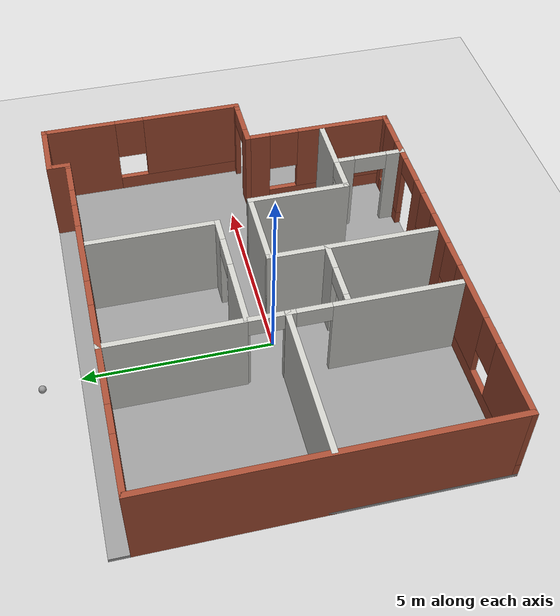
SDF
<sdf version="1.6">
 <world name="default">
  <model name="ground_plane">
   <static>1</static>
   <link name="link">
    <collision name="collision">
     <geometry><plane><normal>0 0 1</normal><size>100 100</size></plane></geometry>
     <surface><friction><ode><mu>100</mu><mu2>50</mu2></ode></friction></surface>
    </collision>
    <visual name="visual">
     <cast_shadows>0</cast_shadows>
     <geometry><plane><normal>0 0 1</normal><size>100 100</size></plane></geometry>
     <material>
      <script><uri>file://media/materials/scripts/gazebo.material</uri><name>Gazebo/Grey</name></script>
     </material>
    </visual>
   </link>
  </model>
  <model name="Building">
   <pose>0.890532 0.189259 0 0 -0 0</pose>
   <link name="Floor_0">
    <collision name="Floor_0_Collision">
     <geometry><box><size>12.15 9.65 0.1</size></box></geometry>
     <pose>0 0 0.05 0 -0 0</pose>
    </collision>
    <visual name="Floor_0_Visual">
     <pose>0 0 0.05 0 -0 0</pose>
     <geometry><box><size>12.15 9.65 0.1</size></box></geometry>
     <material>
      <script><uri>file://media/materials/scripts/gazebo.material</uri><name>Gazebo/Grey</name></script>
      <ambient>1 1 1 1</ambient>
     </material>
     <meta><layer>0</layer></meta>
    </visual>
   </link>
   <link name="Wall_10">
    <pose>-0.75 4.25 0 0 -0 0</pose>
    <visual name="Wall_10_Visual_0">
     <pose>-4.51925 0 1.25 0 -0 0</pose>
     <geometry><box><size>1.6115 0.15 2.5</size></box></geometry>
     <material>
      <script><uri>file://media/materials/scripts/gazebo.material</uri><name>Gazebo/Bricks</name></script>
      <ambient>1 1 1 1</ambient>
     </material>
     <meta><layer>0</layer></meta>
    </visual>
    <collision name="Wall_10_Collision_0">
     <geometry><box><size>1.6115 0.15 2.5</size></box></geometry>
     <pose>-4.51925 0 1.25 0 -0 0</pose>
    </collision>
    <visual name="Wall_10_Visual_1">
     <pose>5.2153 0 1.25 0 -0 0</pose>
     <geometry><box><size>0.219398 0.15 2.5</size></box></geometry>
     <material>
      <script><uri>file://media/materials/scripts/gazebo.material</uri><name>Gazebo/Bricks</name></script>
      <ambient>1 1 1 1</ambient>
     </material>
     <meta><layer>0</layer></meta>
    </visual>
    <collision name="Wall_10_Collision_1">
     <geometry><box><size>0.219398 0.15 2.5</size></box></geometry>
     <pose>5.2153 0 1.25 0 -0 0</pose>
    </collision>
    <visual name="Wall_10_Visual_2">
     <pose>0.246053 0 0.25 0 -0 0</pose>
     <geometry><box><size>7.9191 0.15 0.5</size></box></geometry>
     <material>
      <script><uri>file://media/materials/scripts/gazebo.material</uri><name>Gazebo/Bricks</name></script>
      <ambient>1 1 1 1</ambient>
     </material>
     <meta><layer>0</layer></meta>
    </visual>
    <collision name="Wall_10_Collision_2">
     <geometry><box><size>7.9191 0.15 0.5</size></box></geometry>
     <pose>0.246053 0 0.25 0 -0 0</pose>
    </collision>
    <visual name="Wall_10_Visual_3">
     <pose>-1.433 0 1.5 0 -0 0</pose>
     <geometry><box><size>2.96099 0.15 2</size></box></geometry>
     <material>
      <script><uri>file://media/materials/scripts/gazebo.material</uri><name>Gazebo/Bricks</name></script>
      <ambient>1 1 1 1</ambient>
     </material>
     <meta><layer>0</layer></meta>
    </visual>
    <collision name="Wall_10_Collision_3">
     <geometry><box><size>2.96099 0.15 2</size></box></geometry>
     <pose>-1.433 0 1.5 0 -0 0</pose>
    </collision>
    <visual name="Wall_10_Visual_4">
     <pose>1.82828 0 1.5 0 -0 0</pose>
     <geometry><box><size>1.96157 0.15 2</size></box></geometry>
     <material>
      <script><uri>file://media/materials/scripts/gazebo.material</uri><name>Gazebo/Bricks</name></script>
      <ambient>1 1 1 1</ambient>
     </material>
     <meta><layer>0</layer></meta>
    </visual>
    <collision name="Wall_10_Collision_4">
     <geometry><box><size>1.96157 0.15 2</size></box></geometry>
     <pose>1.82828 0 1.5 0 -0 0</pose>
    </collision>
    <visual name="Wall_10_Visual_5">
     <pose>3.90733 0 1.5 0 -0 0</pose>
     <geometry><box><size>0.596536 0.15 2</size></box></geometry>
     <material>
      <script><uri>file://media/materials/scripts/gazebo.material</uri><name>Gazebo/Bricks</name></script>
      <ambient>1 1 1 1</ambient>
     </material>
     <meta><layer>0</layer></meta>
    </visual>
    <collision name="Wall_10_Collision_5">
     <geometry><box><size>0.596536 0.15 2</size></box></geometry>
     <pose>3.90733 0 1.5 0 -0 0</pose>
    </collision>
    <visual name="Wall_10_Visual_6">
     <pose>-3.3135 0 1.9 0 -0 0</pose>
     <geometry><box><size>0.8 0.15 1.2</size></box></geometry>
     <material>
      <script><uri>file://media/materials/scripts/gazebo.material</uri><name>Gazebo/Bricks</name></script>
      <ambient>1 1 1 1</ambient>
     </material>
     <meta><layer>0</layer></meta>
    </visual>
    <collision name="Wall_10_Collision_6">
     <geometry><box><size>0.8 0.15 1.2</size></box></geometry>
     <pose>-3.3135 0 1.9 0 -0 0</pose>
    </collision>
    <visual name="Wall_10_Visual_7">
     <pose>0.447498 0 1.9 0 -0 0</pose>
     <geometry><box><size>0.8 0.15 1.2</size></box></geometry>
     <material>
      <script><uri>file://media/materials/scripts/gazebo.material</uri><name>Gazebo/Bricks</name></script>
      <ambient>1 1 1 1</ambient>
     </material>
     <meta><layer>0</layer></meta>
    </visual>
    <collision name="Wall_10_Collision_7">
     <geometry><box><size>0.8 0.15 1.2</size></box></geometry>
     <pose>0.447498 0 1.9 0 -0 0</pose>
    </collision>
    <visual name="Wall_10_Visual_8">
     <pose>3.20907 0 1.9 0 -0 0</pose>
     <geometry><box><size>0.8 0.15 1.2</size></box></geometry>
     <material>
      <script><uri>file://media/materials/scripts/gazebo.material</uri><name>Gazebo/Bricks</name></script>
      <ambient>1 1 1 1</ambient>
     </material>
     <meta><layer>0</layer></meta>
    </visual>
    <collision name="Wall_10_Collision_8">
     <geometry><box><size>0.8 0.15 1.2</size></box></geometry>
     <pose>3.20907 0 1.9 0 -0 0</pose>
    </collision>
    <visual name="Wall_10_Visual_9">
     <pose>4.6556 0 2.25 0 -0 0</pose>
     <geometry><box><size>0.9 0.15 0.5</size></box></geometry>
     <material>
      <script><uri>file://media/materials/scripts/gazebo.material</uri><name>Gazebo/Bricks</name></script>
      <ambient>1 1 1 1</ambient>
     </material>
     <meta><layer>0</layer></meta>
    </visual>
    <collision name="Wall_10_Collision_9">
     <geometry><box><size>0.9 0.15 0.5</size></box></geometry>
     <pose>4.6556 0 2.25 0 -0 0</pose>
    </collision>
   </link>
   <link name="Wall_11">
    <collision name="Wall_11_Collision">
     <geometry><box><size>0.65 0.15 2.5</size></box></geometry>
     <pose>0 0 1.25 0 -0 0</pose>
    </collision>
    <visual name="Wall_11_Visual">
     <pose>0 0 1.25 0 -0 0</pose>
     <geometry><box><size>0.65 0.15 2.5</size></box></geometry>
     <material>
      <script><uri>file://media/materials/scripts/gazebo.material</uri><name>Gazebo/Bricks</name></script>
      <ambient>1 1 1 1</ambient>
     </material>
     <meta><layer>0</layer></meta>
    </visual>
    <pose>4.5 4.5 0 0 -0 1.5708</pose>
   </link>
   <link name="Wall_12">
    <collision name="Wall_12_Collision">
     <geometry><box><size>1.65 0.15 2.5</size></box></geometry>
     <pose>0 0 1.25 0 -0 0</pose>
    </collision>
    <visual name="Wall_12_Visual">
     <pose>0 0 1.25 0 -0 0</pose>
     <geometry><box><size>1.65 0.15 2.5</size></box></geometry>
     <material>
      <script><uri>file://media/materials/scripts/gazebo.material</uri><name>Gazebo/Bricks</name></script>
      <ambient>1 1 1 1</ambient>
     </material>
     <meta><layer>0</layer></meta>
    </visual>
    <pose>5.25 4.75 0 0 -0 0</pose>
   </link>
   <link name="Wall_13">
    <pose>6 2 0 0 0 -1.5708</pose>
    <visual name="Wall_13_Visual_0">
     <pose>-1.79372 0 1.25 0 -0 0</pose>
     <geometry><box><size>2.06257 0.15 2.5</size></box></geometry>
     <material>
      <script><uri>file://media/materials/scripts/gazebo.material</uri><name>Gazebo/Bricks</name></script>
      <ambient>1 1 1 1</ambient>
     </material>
     <meta><layer>0</layer></meta>
    </visual>
    <collision name="Wall_13_Collision_0">
     <geometry><box><size>2.06257 0.15 2.5</size></box></geometry>
     <pose>-1.79372 0 1.25 0 -0 0</pose>
    </collision>
    <visual name="Wall_13_Visual_1">
     <pose>1.03128 0 0.25 0 -0 0</pose>
     <geometry><box><size>3.58743 0.15 0.5</size></box></geometry>
     <material>
      <script><uri>file://media/materials/scripts/gazebo.material</uri><name>Gazebo/Bricks</name></script>
      <ambient>1 1 1 1</ambient>
     </material>
     <meta><layer>0</layer></meta>
    </visual>
    <collision name="Wall_13_Collision_1">
     <geometry><box><size>3.58743 0.15 0.5</size></box></geometry>
     <pose>1.03128 0 0.25 0 -0 0</pose>
    </collision>
    <visual name="Wall_13_Visual_2">
     <pose>1.43128 0 1.5 0 -0 0</pose>
     <geometry><box><size>2.78743 0.15 2</size></box></geometry>
     <material>
      <script><uri>file://media/materials/scripts/gazebo.material</uri><name>Gazebo/Bricks</name></script>
      <ambient>1 1 1 1</ambient>
     </material>
     <meta><layer>0</layer></meta>
    </visual>
    <collision name="Wall_13_Collision_2">
     <geometry><box><size>2.78743 0.15 2</size></box></geometry>
     <pose>1.43128 0 1.5 0 -0 0</pose>
    </collision>
    <visual name="Wall_13_Visual_3">
     <pose>-0.362433 0 1.9 0 -0 0</pose>
     <geometry><box><size>0.8 0.15 1.2</size></box></geometry>
     <material>
      <script><uri>file://media/materials/scripts/gazebo.material</uri><name>Gazebo/Bricks</name></script>
      <ambient>1 1 1 1</ambient>
     </material>
     <meta><layer>0</layer></meta>
    </visual>
    <collision name="Wall_13_Collision_3">
     <geometry><box><size>0.8 0.15 1.2</size></box></geometry>
     <pose>-0.362433 0 1.9 0 -0 0</pose>
    </collision>
   </link>
   <link name="Wall_14">
    <pose>5.25 -0.75 0 0 -0 3.14159</pose>
    <visual name="Wall_14_Visual_0">
     <pose>-0.675418 0 1.25 0 -0 0</pose>
     <geometry><box><size>0.299163 0.15 2.5</size></box></geometry>
     <material>
      <script><uri>file://media/materials/scripts/gazebo.material</uri><name>Gazebo/Bricks</name></script>
      <ambient>1 1 1 1</ambient>
     </material>
     <meta><layer>0</layer></meta>
    </visual>
    <collision name="Wall_14_Collision_0">
     <geometry><box><size>0.299163 0.15 2.5</size></box></geometry>
     <pose>-0.675418 0 1.25 0 -0 0</pose>
    </collision>
    <visual name="Wall_14_Visual_1">
     <pose>0.599582 0 1.25 0 -0 0</pose>
     <geometry><box><size>0.450837 0.15 2.5</size></box></geometry>
     <material>
      <script><uri>file://media/materials/scripts/gazebo.material</uri><name>Gazebo/Bricks</name></script>
      <ambient>1 1 1 1</ambient>
     </material>
     <meta><layer>0</layer></meta>
    </visual>
    <collision name="Wall_14_Collision_1">
     <geometry><box><size>0.450837 0.15 2.5</size></box></geometry>
     <pose>0.599582 0 1.25 0 -0 0</pose>
    </collision>
    <visual name="Wall_14_Visual_2">
     <pose>-0.075837 0 2.25 0 -0 0</pose>
     <geometry><box><size>0.9 0.15 0.5</size></box></geometry>
     <material>
      <script><uri>file://media/materials/scripts/gazebo.material</uri><name>Gazebo/Bricks</name></script>
      <ambient>1 1 1 1</ambient>
     </material>
     <meta><layer>0</layer></meta>
    </visual>
    <collision name="Wall_14_Collision_2">
     <geometry><box><size>0.9 0.15 0.5</size></box></geometry>
     <pose>-0.075837 0 2.25 0 -0 0</pose>
    </collision>
   </link>
   <link name="Wall_15">
    <pose>4.5 -2.75 0 0 0 -1.5708</pose>
    <visual name="Wall_15_Visual_0">
     <pose>-1.71977 0 1.25 0 -0 0</pose>
     <geometry><box><size>0.71046 0.15 2.5</size></box></geometry>
     <material>
      <script><uri>file://media/materials/scripts/gazebo.material</uri><name>Gazebo/Bricks</name></script>
      <ambient>1 1 1 1</ambient>
     </material>
     <meta><layer>0</layer></meta>
    </visual>
    <collision name="Wall_15_Collision_0">
     <geometry><box><size>0.71046 0.15 2.5</size></box></geometry>
     <pose>-1.71977 0 1.25 0 -0 0</pose>
    </collision>
    <visual name="Wall_15_Visual_1">
     <pose>0.35523 0 0.25 0 -0 0</pose>
     <geometry><box><size>3.43954 0.15 0.5</size></box></geometry>
     <material>
      <script><uri>file://media/materials/scripts/gazebo.material</uri><name>Gazebo/Bricks</name></script>
      <ambient>1 1 1 1</ambient>
     </material>
     <meta><layer>0</layer></meta>
    </visual>
    <collision name="Wall_15_Collision_1">
     <geometry><box><size>3.43954 0.15 0.5</size></box></geometry>
     <pose>0.35523 0 0.25 0 -0 0</pose>
    </collision>
    <visual name="Wall_15_Visual_2">
     <pose>0.75523 0 1.5 0 -0 0</pose>
     <geometry><box><size>2.63954 0.15 2</size></box></geometry>
     <material>
      <script><uri>file://media/materials/scripts/gazebo.material</uri><name>Gazebo/Bricks</name></script>
      <ambient>1 1 1 1</ambient>
     </material>
     <meta><layer>0</layer></meta>
    </visual>
    <collision name="Wall_15_Collision_2">
     <geometry><box><size>2.63954 0.15 2</size></box></geometry>
     <pose>0.75523 0 1.5 0 -0 0</pose>
    </collision>
    <visual name="Wall_15_Visual_3">
     <pose>-0.96454 0 1.9 0 -0 0</pose>
     <geometry><box><size>0.8 0.15 1.2</size></box></geometry>
     <material>
      <script><uri>file://media/materials/scripts/gazebo.material</uri><name>Gazebo/Bricks</name></script>
      <ambient>1 1 1 1</ambient>
     </material>
     <meta><layer>0</layer></meta>
    </visual>
    <collision name="Wall_15_Collision_3">
     <geometry><box><size>0.8 0.15 1.2</size></box></geometry>
     <pose>-0.96454 0 1.9 0 -0 0</pose>
    </collision>
   </link>
   <link name="Wall_16">
    <pose>-0.75 -4.75 0 0 -0 3.14159</pose>
    <visual name="Wall_16_Visual_0">
     <pose>-5.13705 0 1.25 0 -0 0</pose>
     <geometry><box><size>0.375908 0.15 2.5</size></box></geometry>
     <material>
      <script><uri>file://media/materials/scripts/gazebo.material</uri><name>Gazebo/Bricks</name></script>
      <ambient>1 1 1 1</ambient>
     </material>
     <meta><layer>0</layer></meta>
    </visual>
    <collision name="Wall_16_Collision_0">
     <geometry><box><size>0.375908 0.15 2.5</size></box></geometry>
     <pose>-5.13705 0 1.25 0 -0 0</pose>
    </collision>
    <visual name="Wall_16_Visual_1">
     <pose>-2.23615 0 1.25 0 -0 0</pose>
     <geometry><box><size>0.518056 0.15 2.5</size></box></geometry>
     <material>
      <script><uri>file://media/materials/scripts/gazebo.material</uri><name>Gazebo/Bricks</name></script>
      <ambient>1 1 1 1</ambient>
     </material>
     <meta><layer>0</layer></meta>
    </visual>
    <collision name="Wall_16_Collision_1">
     <geometry><box><size>0.518056 0.15 2.5</size></box></geometry>
     <pose>-2.23615 0 1.25 0 -0 0</pose>
    </collision>
    <visual name="Wall_16_Visual_2">
     <pose>-4.17213 0 0.25 0 -0 0</pose>
     <geometry><box><size>1.55392 0.15 0.5</size></box></geometry>
     <material>
      <script><uri>file://media/materials/scripts/gazebo.material</uri><name>Gazebo/Bricks</name></script>
      <ambient>1 1 1 1</ambient>
     </material>
     <meta><layer>0</layer></meta>
    </visual>
    <collision name="Wall_16_Collision_2">
     <geometry><box><size>1.55392 0.15 0.5</size></box></geometry>
     <pose>-4.17213 0 0.25 0 -0 0</pose>
    </collision>
    <visual name="Wall_16_Visual_3">
     <pose>1.67394 0 0.25 0 -0 0</pose>
     <geometry><box><size>7.30212 0.15 0.5</size></box></geometry>
     <material>
      <script><uri>file://media/materials/scripts/gazebo.material</uri><name>Gazebo/Bricks</name></script>
      <ambient>1 1 1 1</ambient>
     </material>
     <meta><layer>0</layer></meta>
    </visual>
    <collision name="Wall_16_Collision_3">
     <geometry><box><size>7.30212 0.15 0.5</size></box></geometry>
     <pose>1.67394 0 0.25 0 -0 0</pose>
    </collision>
    <visual name="Wall_16_Visual_4">
     <pose>-3.77213 0 1.5 0 -0 0</pose>
     <geometry><box><size>0.753917 0.15 2</size></box></geometry>
     <material>
      <script><uri>file://media/materials/scripts/gazebo.material</uri><name>Gazebo/Bricks</name></script>
      <ambient>1 1 1 1</ambient>
     </material>
     <meta><layer>0</layer></meta>
    </visual>
    <collision name="Wall_16_Collision_4">
     <geometry><box><size>0.753917 0.15 2</size></box></geometry>
     <pose>-3.77213 0 1.5 0 -0 0</pose>
    </collision>
    <visual name="Wall_16_Visual_5">
     <pose>-3.77213 0 1.5 0 -0 0</pose>
     <geometry><box><size>0.753917 0.15 2</size></box></geometry>
     <material>
      <script><uri>file://media/materials/scripts/gazebo.material</uri><name>Gazebo/Bricks</name></script>
      <ambient>1 1 1 1</ambient>
     </material>
     <meta><layer>0</layer></meta>
    </visual>
    <collision name="Wall_16_Collision_5">
     <geometry><box><size>0.753917 0.15 2</size></box></geometry>
     <pose>-3.77213 0 1.5 0 -0 0</pose>
    </collision>
    <visual name="Wall_16_Visual_6">
     <pose>-0.630295 0 1.5 0 -0 0</pose>
     <geometry><box><size>1.09365 0.15 2</size></box></geometry>
     <material>
      <script><uri>file://media/materials/scripts/gazebo.material</uri><name>Gazebo/Bricks</name></script>
      <ambient>1 1 1 1</ambient>
     </material>
     <meta><layer>0</layer></meta>
    </visual>
    <collision name="Wall_16_Collision_6">
     <geometry><box><size>1.09365 0.15 2</size></box></geometry>
     <pose>-0.630295 0 1.5 0 -0 0</pose>
    </collision>
    <visual name="Wall_16_Visual_7">
     <pose>1.59211 0 1.5 0 -0 0</pose>
     <geometry><box><size>1.75116 0.15 2</size></box></geometry>
     <material>
      <script><uri>file://media/materials/scripts/gazebo.material</uri><name>Gazebo/Bricks</name></script>
      <ambient>1 1 1 1</ambient>
     </material>
     <meta><layer>0</layer></meta>
    </visual>
    <collision name="Wall_16_Collision_7">
     <geometry><box><size>1.75116 0.15 2</size></box></geometry>
     <pose>1.59211 0 1.5 0 -0 0</pose>
    </collision>
    <visual name="Wall_16_Visual_8">
     <pose>4.29635 0 1.5 0 -0 0</pose>
     <geometry><box><size>2.05731 0.15 2</size></box></geometry>
     <material>
      <script><uri>file://media/materials/scripts/gazebo.material</uri><name>Gazebo/Bricks</name></script>
      <ambient>1 1 1 1</ambient>
     </material>
     <meta><layer>0</layer></meta>
    </visual>
    <collision name="Wall_16_Collision_8">
     <geometry><box><size>2.05731 0.15 2</size></box></geometry>
     <pose>4.29635 0 1.5 0 -0 0</pose>
    </collision>
    <visual name="Wall_16_Visual_9">
     <pose>-4.54909 0 1.9 0 -0 0</pose>
     <geometry><box><size>0.8 0.15 1.2</size></box></geometry>
     <material>
      <script><uri>file://media/materials/scripts/gazebo.material</uri><name>Gazebo/Bricks</name></script>
      <ambient>1 1 1 1</ambient>
     </material>
     <meta><layer>0</layer></meta>
    </visual>
    <collision name="Wall_16_Collision_9">
     <geometry><box><size>0.8 0.15 1.2</size></box></geometry>
     <pose>-4.54909 0 1.9 0 -0 0</pose>
    </collision>
    <visual name="Wall_16_Visual_10">
     <pose>-1.57712 0 1.9 0 -0 0</pose>
     <geometry><box><size>0.8 0.15 1.2</size></box></geometry>
     <material>
      <script><uri>file://media/materials/scripts/gazebo.material</uri><name>Gazebo/Bricks</name></script>
      <ambient>1 1 1 1</ambient>
     </material>
     <meta><layer>0</layer></meta>
    </visual>
    <collision name="Wall_16_Collision_10">
     <geometry><box><size>0.8 0.15 1.2</size></box></geometry>
     <pose>-1.57712 0 1.9 0 -0 0</pose>
    </collision>
    <visual name="Wall_16_Visual_11">
     <pose>0.316528 0 1.9 0 -0 0</pose>
     <geometry><box><size>0.8 0.15 1.2</size></box></geometry>
     <material>
      <script><uri>file://media/materials/scripts/gazebo.material</uri><name>Gazebo/Bricks</name></script>
      <ambient>1 1 1 1</ambient>
     </material>
     <meta><layer>0</layer></meta>
    </visual>
    <collision name="Wall_16_Collision_11">
     <geometry><box><size>0.8 0.15 1.2</size></box></geometry>
     <pose>0.316528 0 1.9 0 -0 0</pose>
    </collision>
    <visual name="Wall_16_Visual_12">
     <pose>2.86769 0 1.9 0 -0 0</pose>
     <geometry><box><size>0.8 0.15 1.2</size></box></geometry>
     <material>
      <script><uri>file://media/materials/scripts/gazebo.material</uri><name>Gazebo/Bricks</name></script>
      <ambient>1 1 1 1</ambient>
     </material>
     <meta><layer>0</layer></meta>
    </visual>
    <collision name="Wall_16_Collision_12">
     <geometry><box><size>0.8 0.15 1.2</size></box></geometry>
     <pose>2.86769 0 1.9 0 -0 0</pose>
    </collision>
    <visual name="Wall_16_Visual_13">
     <pose>-2.94517 0 2.25 0 -0 0</pose>
     <geometry><box><size>0.9 0.15 0.5</size></box></geometry>
     <material>
      <script><uri>file://media/materials/scripts/gazebo.material</uri><name>Gazebo/Bricks</name></script>
      <ambient>1 1 1 1</ambient>
     </material>
     <meta><layer>0</layer></meta>
    </visual>
    <collision name="Wall_16_Collision_13">
     <geometry><box><size>0.9 0.15 0.5</size></box></geometry>
     <pose>-2.94517 0 2.25 0 -0 0</pose>
    </collision>
    <visual name="Wall_16_Visual_14">
     <pose>-2.94517 0 2.25 0 -0 0</pose>
     <geometry><box><size>0.9 0.15 0.5</size></box></geometry>
     <material>
      <script><uri>file://media/materials/scripts/gazebo.material</uri><name>Gazebo/Bricks</name></script>
      <ambient>1 1 1 1</ambient>
     </material>
     <meta><layer>0</layer></meta>
    </visual>
    <collision name="Wall_16_Collision_14">
     <geometry><box><size>0.9 0.15 0.5</size></box></geometry>
     <pose>-2.94517 0 2.25 0 -0 0</pose>
    </collision>
   </link>
   <link name="Wall_17">
    <pose>-2 -0.171 0 0 0 -1.5708</pose>
    <visual name="Wall_17_Visual_0">
     <pose>-2.70284 0 1.25 0 -0 0</pose>
     <geometry><box><size>3.59432 0.15 2.5</size></box></geometry>
     <material>
      <script><uri>file://media/materials/scripts/gazebo.material</uri><name>Gazebo/CeilingTiled</name></script>
      <ambient>1 1 1 1</ambient>
     </material>
     <meta><layer>0</layer></meta>
    </visual>
    <collision name="Wall_17_Collision_0">
     <geometry><box><size>3.59432 0.15 2.5</size></box></geometry>
     <pose>-2.70284 0 1.25 0 -0 0</pose>
    </collision>
    <visual name="Wall_17_Visual_1">
     <pose>0.136083 0 1.25 0 -0 0</pose>
     <geometry><box><size>0.283529 0.15 2.5</size></box></geometry>
     <material>
      <script><uri>file://media/materials/scripts/gazebo.material</uri><name>Gazebo/CeilingTiled</name></script>
      <ambient>1 1 1 1</ambient>
     </material>
     <meta><layer>0</layer></meta>
    </visual>
    <collision name="Wall_17_Collision_1">
     <geometry><box><size>0.283529 0.15 2.5</size></box></geometry>
     <pose>0.136083 0 1.25 0 -0 0</pose>
    </collision>
    <visual name="Wall_17_Visual_2">
     <pose>2.83892 0 1.25 0 -0 0</pose>
     <geometry><box><size>3.32215 0.15 2.5</size></box></geometry>
     <material>
      <script><uri>file://media/materials/scripts/gazebo.material</uri><name>Gazebo/CeilingTiled</name></script>
      <ambient>1 1 1 1</ambient>
     </material>
     <meta><layer>0</layer></meta>
    </visual>
    <collision name="Wall_17_Collision_2">
     <geometry><box><size>3.32215 0.15 2.5</size></box></geometry>
     <pose>2.83892 0 1.25 0 -0 0</pose>
    </collision>
    <visual name="Wall_17_Visual_3">
     <pose>-0.455681 0 2.25 0 -0 0</pose>
     <geometry><box><size>0.9 0.15 0.5</size></box></geometry>
     <material>
      <script><uri>file://media/materials/scripts/gazebo.material</uri><name>Gazebo/CeilingTiled</name></script>
      <ambient>1 1 1 1</ambient>
     </material>
     <meta><layer>0</layer></meta>
    </visual>
    <collision name="Wall_17_Collision_3">
     <geometry><box><size>0.9 0.15 0.5</size></box></geometry>
     <pose>-0.455681 0 2.25 0 -0 0</pose>
    </collision>
    <visual name="Wall_17_Visual_4">
     <pose>0.727848 0 2.25 0 -0 0</pose>
     <geometry><box><size>0.9 0.15 0.5</size></box></geometry>
     <material>
      <script><uri>file://media/materials/scripts/gazebo.material</uri><name>Gazebo/CeilingTiled</name></script>
      <ambient>1 1 1 1</ambient>
     </material>
     <meta><layer>0</layer></meta>
    </visual>
    <collision name="Wall_17_Collision_4">
     <geometry><box><size>0.9 0.15 0.5</size></box></geometry>
     <pose>0.727848 0 2.25 0 -0 0</pose>
    </collision>
   </link>
   <link name="Wall_19">
    <collision name="Wall_19_Collision">
     <geometry><box><size>4.103 0.15 2.5</size></box></geometry>
     <pose>0 0 1.25 0 -0 0</pose>
    </collision>
    <visual name="Wall_19_Visual">
     <pose>0 0 1.25 0 -0 0</pose>
     <geometry><box><size>4.103 0.15 2.5</size></box></geometry>
     <material>
      <script><uri>file://media/materials/scripts/gazebo.material</uri><name>Gazebo/CeilingTiled</name></script>
      <ambient>1 1 1 1</ambient>
     </material>
     <meta><layer>0</layer></meta>
    </visual>
    <pose>-3.9765 -0.25 0 0 -0 3.14159</pose>
   </link>
   <link name="Wall_21">
    <pose>-0.284 0.75 0 0 -0 0</pose>
    <visual name="Wall_21_Visual_0">
     <pose>-0.806794 0 1.25 0 -0 0</pose>
     <geometry><box><size>1.88641 0.15 2.5</size></box></geometry>
     <material>
      <script><uri>file://media/materials/scripts/gazebo.material</uri><name>Gazebo/CeilingTiled</name></script>
      <ambient>1 1 1 1</ambient>
     </material>
     <meta><layer>0</layer></meta>
    </visual>
    <collision name="Wall_21_Collision_0">
     <geometry><box><size>1.88641 0.15 2.5</size></box></geometry>
     <pose>-0.806794 0 1.25 0 -0 0</pose>
    </collision>
    <visual name="Wall_21_Visual_1">
     <pose>1.39321 0 1.25 0 -0 0</pose>
     <geometry><box><size>0.713588 0.15 2.5</size></box></geometry>
     <material>
      <script><uri>file://media/materials/scripts/gazebo.material</uri><name>Gazebo/CeilingTiled</name></script>
      <ambient>1 1 1 1</ambient>
     </material>
     <meta><layer>0</layer></meta>
    </visual>
    <collision name="Wall_21_Collision_1">
     <geometry><box><size>0.713588 0.15 2.5</size></box></geometry>
     <pose>1.39321 0 1.25 0 -0 0</pose>
    </collision>
    <visual name="Wall_21_Visual_2">
     <pose>0.586412 0 2.25 0 -0 0</pose>
     <geometry><box><size>0.9 0.15 0.5</size></box></geometry>
     <material>
      <script><uri>file://media/materials/scripts/gazebo.material</uri><name>Gazebo/CeilingTiled</name></script>
      <ambient>1 1 1 1</ambient>
     </material>
     <meta><layer>0</layer></meta>
    </visual>
    <collision name="Wall_21_Collision_2">
     <geometry><box><size>0.9 0.15 0.5</size></box></geometry>
     <pose>0.586412 0 2.25 0 -0 0</pose>
    </collision>
   </link>
   <link name="Wall_22">
    <collision name="Wall_22_Collision">
     <geometry><box><size>3.493 0.15 2.5</size></box></geometry>
     <pose>0 0 1.25 0 -0 0</pose>
    </collision>
    <visual name="Wall_22_Visual">
     <pose>0 0 1.25 0 -0 0</pose>
     <geometry><box><size>3.493 0.15 2.5</size></box></geometry>
     <material>
      <script><uri>file://media/materials/scripts/gazebo.material</uri><name>Gazebo/CeilingTiled</name></script>
      <ambient>1 1 1 1</ambient>
     </material>
     <meta><layer>0</layer></meta>
    </visual>
    <pose>1.391 2.4215 0 0 -0 1.5708</pose>
   </link>
   <link name="Wall_24">
    <pose>-1.034 -1.75 0 0 -0 0</pose>
    <visual name="Wall_24_Visual_0">
     <pose>-0.858964 0 1.25 0 -0 0</pose>
     <geometry><box><size>0.282073 0.15 2.5</size></box></geometry>
     <material>
      <script><uri>file://media/materials/scripts/gazebo.material</uri><name>Gazebo/CeilingTiled</name></script>
      <ambient>1 1 1 1</ambient>
     </material>
     <meta><layer>0</layer></meta>
    </visual>
    <collision name="Wall_24_Collision_0">
     <geometry><box><size>0.282073 0.15 2.5</size></box></geometry>
     <pose>-0.858964 0 1.25 0 -0 0</pose>
    </collision>
    <visual name="Wall_24_Visual_1">
     <pose>0.591036 0 1.25 0 -0 0</pose>
     <geometry><box><size>0.817927 0.15 2.5</size></box></geometry>
     <material>
      <script><uri>file://media/materials/scripts/gazebo.material</uri><name>Gazebo/CeilingTiled</name></script>
      <ambient>1 1 1 1</ambient>
     </material>
     <meta><layer>0</layer></meta>
    </visual>
    <collision name="Wall_24_Collision_1">
     <geometry><box><size>0.817927 0.15 2.5</size></box></geometry>
     <pose>0.591036 0 1.25 0 -0 0</pose>
    </collision>
    <visual name="Wall_24_Visual_2">
     <pose>-0.267927 0 2.25 0 -0 0</pose>
     <geometry><box><size>0.9 0.15 0.5</size></box></geometry>
     <material>
      <script><uri>file://media/materials/scripts/gazebo.material</uri><name>Gazebo/CeilingTiled</name></script>
      <ambient>1 1 1 1</ambient>
     </material>
     <meta><layer>0</layer></meta>
    </visual>
    <collision name="Wall_24_Collision_2">
     <geometry><box><size>0.9 0.15 0.5</size></box></geometry>
     <pose>-0.267927 0 2.25 0 -0 0</pose>
    </collision>
   </link>
   <link name="Wall_25">
    <collision name="Wall_25_Collision">
     <geometry><box><size>3.12197 0.15 2.5</size></box></geometry>
     <pose>0 0 1.25 0 -0 0</pose>
    </collision>
    <visual name="Wall_25_Visual">
     <pose>0 0 1.25 0 -0 0</pose>
     <geometry><box><size>3.12197 0.15 2.5</size></box></geometry>
     <material>
      <script><uri>file://media/materials/scripts/gazebo.material</uri><name>Gazebo/CeilingTiled</name></script>
      <ambient>1 1 1 1</ambient>
     </material>
     <meta><layer>0</layer></meta>
    </visual>
    <pose>-0.109221 -3.23599 0 0 0 -1.57095</pose>
   </link>
   <link name="Wall_27">
    <collision name="Wall_27_Collision">
     <geometry><box><size>1.65 0.15 2.5</size></box></geometry>
     <pose>0 0 1.25 0 -0 0</pose>
    </collision>
    <visual name="Wall_27_Visual">
     <pose>0 0 1.25 0 -0 0</pose>
     <geometry><box><size>1.65 0.15 2.5</size></box></geometry>
     <material>
      <script><uri>file://media/materials/scripts/gazebo.material</uri><name>Gazebo/CeilingTiled</name></script>
      <ambient>1 1 1 1</ambient>
     </material>
     <meta><layer>0</layer></meta>
    </visual>
    <pose>-0.109 -1 0 0 -0 1.5708</pose>
   </link>
   <link name="Wall_28">
    <collision name="Wall_28_Collision">
     <geometry><box><size>2.259 0.15 2.5</size></box></geometry>
     <pose>0 0 1.25 0 -0 0</pose>
    </collision>
    <visual name="Wall_28_Visual">
     <pose>0 0 1.25 0 -0 0</pose>
     <geometry><box><size>2.259 0.15 2.5</size></box></geometry>
     <material>
      <script><uri>file://media/materials/scripts/gazebo.material</uri><name>Gazebo/CeilingTiled</name></script>
      <ambient>1 1 1 1</ambient>
     </material>
     <meta><layer>0</layer></meta>
    </visual>
    <pose>0.9455 -0.25 0 0 -0 0</pose>
   </link>
   <link name="Wall_29">
    <collision name="Wall_29_Collision">
     <geometry><box><size>2.772 0.15 2.5</size></box></geometry>
     <pose>0 0 1.25 0 -0 0</pose>
    </collision>
    <visual name="Wall_29_Visual">
     <pose>0 0 1.25 0 -0 0</pose>
     <geometry><box><size>2.772 0.15 2.5</size></box></geometry>
     <material>
      <script><uri>file://media/materials/scripts/gazebo.material</uri><name>Gazebo/CeilingTiled</name></script>
      <ambient>1 1 1 1</ambient>
     </material>
     <meta><layer>0</layer></meta>
    </visual>
    <pose>2 -1.561 0 0 0 -1.5708</pose>
   </link>
   <link name="Wall_30">
    <pose>3.17028 -2.87199 0 0 -0 1.2e-05</pose>
    <visual name="Wall_30_Visual_0">
     <pose>-1.1901 0 1.25 0 -0 0</pose>
     <geometry><box><size>0.110365 0.15 2.5</size></box></geometry>
     <material>
      <script><uri>file://media/materials/scripts/gazebo.material</uri><name>Gazebo/CeilingTiled</name></script>
      <ambient>1 1 1 1</ambient>
     </material>
     <meta><layer>0</layer></meta>
    </visual>
    <collision name="Wall_30_Collision_0">
     <geometry><box><size>0.110365 0.15 2.5</size></box></geometry>
     <pose>-1.1901 0 1.25 0 -0 0</pose>
    </collision>
    <visual name="Wall_30_Visual_1">
     <pose>0.505183 0 1.25 0 -0 0</pose>
     <geometry><box><size>1.48019 0.15 2.5</size></box></geometry>
     <material>
      <script><uri>file://media/materials/scripts/gazebo.material</uri><name>Gazebo/CeilingTiled</name></script>
      <ambient>1 1 1 1</ambient>
     </material>
     <meta><layer>0</layer></meta>
    </visual>
    <collision name="Wall_30_Collision_1">
     <geometry><box><size>1.48019 0.15 2.5</size></box></geometry>
     <pose>0.505183 0 1.25 0 -0 0</pose>
    </collision>
    <visual name="Wall_30_Visual_2">
     <pose>-0.684913 0 2.25 0 -0 0</pose>
     <geometry><box><size>0.9 0.15 0.5</size></box></geometry>
     <material>
      <script><uri>file://media/materials/scripts/gazebo.material</uri><name>Gazebo/CeilingTiled</name></script>
      <ambient>1 1 1 1</ambient>
     </material>
     <meta><layer>0</layer></meta>
    </visual>
    <collision name="Wall_30_Collision_2">
     <geometry><box><size>0.9 0.15 0.5</size></box></geometry>
     <pose>-0.684913 0 2.25 0 -0 0</pose>
    </collision>
   </link>
   <link name="Wall_32">
    <pose>3 -3.823 0 0 0 -1.5708</pose>
    <visual name="Wall_32_Visual_0">
     <pose>-0.71424 0 1.25 0 -0 0</pose>
     <geometry><box><size>0.57152 0.15 2.5</size></box></geometry>
     <material>
      <script><uri>file://media/materials/scripts/gazebo.material</uri><name>Gazebo/CeilingTiled</name></script>
      <ambient>1 1 1 1</ambient>
     </material>
     <meta><layer>0</layer></meta>
    </visual>
    <collision name="Wall_32_Collision_0">
     <geometry><box><size>0.57152 0.15 2.5</size></box></geometry>
     <pose>-0.71424 0 1.25 0 -0 0</pose>
    </collision>
    <visual name="Wall_32_Visual_1">
     <pose>0.73576 0 1.25 0 -0 0</pose>
     <geometry><box><size>0.52848 0.15 2.5</size></box></geometry>
     <material>
      <script><uri>file://media/materials/scripts/gazebo.material</uri><name>Gazebo/CeilingTiled</name></script>
      <ambient>1 1 1 1</ambient>
     </material>
     <meta><layer>0</layer></meta>
    </visual>
    <collision name="Wall_32_Collision_1">
     <geometry><box><size>0.52848 0.15 2.5</size></box></geometry>
     <pose>0.73576 0 1.25 0 -0 0</pose>
    </collision>
    <visual name="Wall_32_Visual_2">
     <pose>0.02152 0 2.25 0 -0 0</pose>
     <geometry><box><size>0.9 0.15 0.5</size></box></geometry>
     <material>
      <script><uri>file://media/materials/scripts/gazebo.material</uri><name>Gazebo/CeilingTiled</name></script>
      <ambient>1 1 1 1</ambient>
     </material>
     <meta><layer>0</layer></meta>
    </visual>
    <collision name="Wall_32_Collision_2">
     <geometry><box><size>0.9 0.15 0.5</size></box></geometry>
     <pose>0.02152 0 2.25 0 -0 0</pose>
    </collision>
   </link>
   <link name="Wall_9">
    <collision name="Wall_9_Collision">
     <geometry><box><size>9.15 0.15 2.5</size></box></geometry>
     <pose>0 0 1.25 0 -0 0</pose>
    </collision>
    <visual name="Wall_9_Visual">
     <pose>0 0 1.25 0 -0 0</pose>
     <geometry><box><size>9.15 0.15 2.5</size></box></geometry>
     <material>
      <script><uri>file://media/materials/scripts/gazebo.material</uri><name>Gazebo/Bricks</name></script>
      <ambient>1 1 1 1</ambient>
     </material>
     <meta><layer>0</layer></meta>
    </visual>
    <pose>-6 -0.25 0 0 -0 1.5708</pose>
   </link>
   <static>1</static>
  </model>
  <model name="my_ball_0">
   <link name="link_0">
    <pose>1e-06 0 0 0 -0 0</pose>
    <inertial>
     <mass>1</mass>
     <inertia><ixx>0.1</ixx><ixy>0</ixy><ixz>0</ixz><iyy>0.1</iyy><iyz>0</iyz><izz>0.1</izz></inertia>
    </inertial>
    <visual name="visual">
     <geometry><sphere><radius>0.1</radius></sphere></geometry>
     <material>
      <lighting>1</lighting>
      <script><uri>file://media/materials/scripts/gazebo.material</uri><name>Gazebo/Grey</name></script>
      <ambient>1 1 1 1</ambient>
      <diffuse>1 1 1 1</diffuse>
      <specular>1 1 1 1</specular>
      <emissive>1 1 1 1</emissive>
      <shader type="vertex"><normal_map>__default__</normal_map></shader>
     </material>
    </visual>
    <collision name="collision">
     <geometry><sphere><radius>0.1</radius></sphere></geometry>
     <surface>
      <friction>
       <ode><mu>1</mu><mu2>1</mu2><fdir1>0 0 0</fdir1><slip1>0</slip1><slip2>0</slip2></ode>
       <torsional>
        <coefficient>1</coefficient>
        <patch_radius>0</patch_radius>
        <surface_radius>0</surface_radius>
        <use_patch_radius>1</use_patch_radius>
        <ode><slip>0</slip></ode>
       </torsional>
      </friction>
      <bounce><restitution_coefficient>0</restitution_coefficient><threshold>1e+06</threshold></bounce>
      <contact>
       <collide_without_contact>0</collide_without_contact>
       <collide_without_contact_bitmask>1</collide_without_contact_bitmask>
       <collide_bitmask>1</collide_bitmask>
       <ode>
        <soft_cfm>0</soft_cfm>
        <soft_erp>0.2</soft_erp>
        <kp>1e+13</kp>
        <kd>1</kd>
        <max_vel>0.01</max_vel>
        <min_depth>0</min_depth>
       </ode>
       <bullet>
        <split_impulse>1</split_impulse>
        <split_impulse_penetration_threshold>-0.01</split_impulse_penetration_threshold>
        <soft_cfm>0</soft_cfm>
        <soft_erp>0.2</soft_erp>
        <kp>1e+13</kp>
        <kd>1</kd>
       </bullet>
      </contact>
     </surface>
    </collision>
   </link>
   <static>0</static>
   <pose>-0.174845 5.99232 0.1 0 -0 0</pose>
  </model>
 </world>
</sdf>
